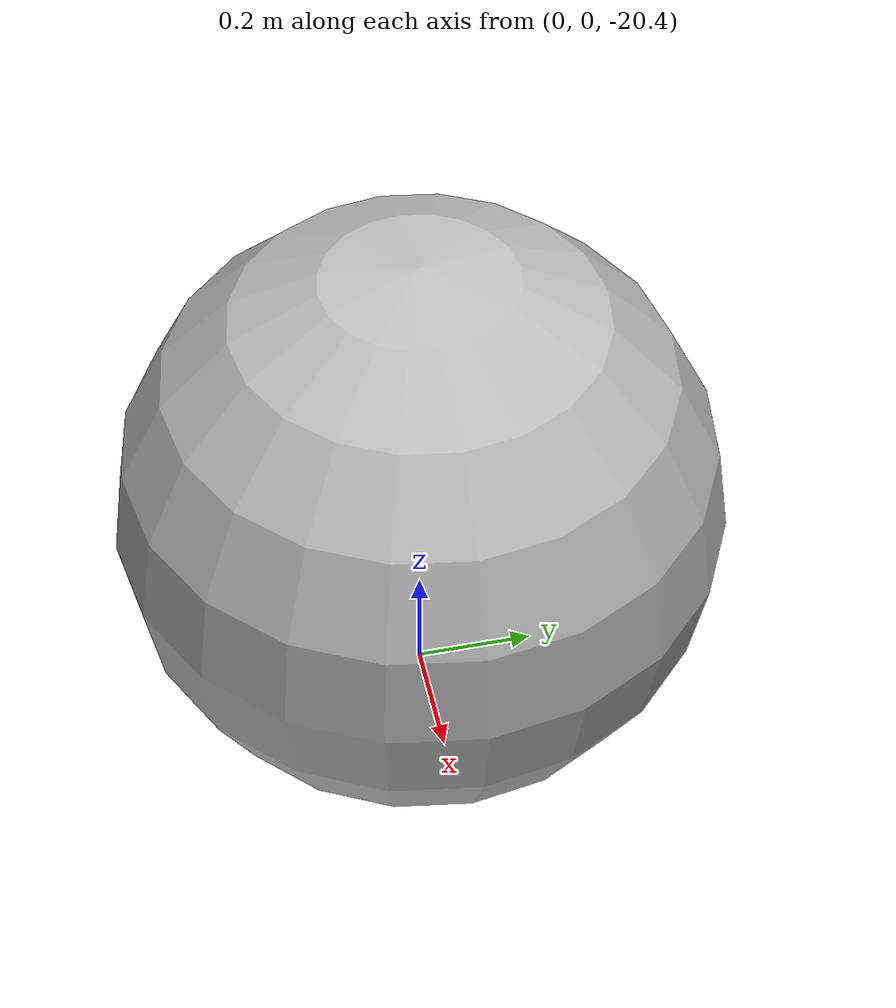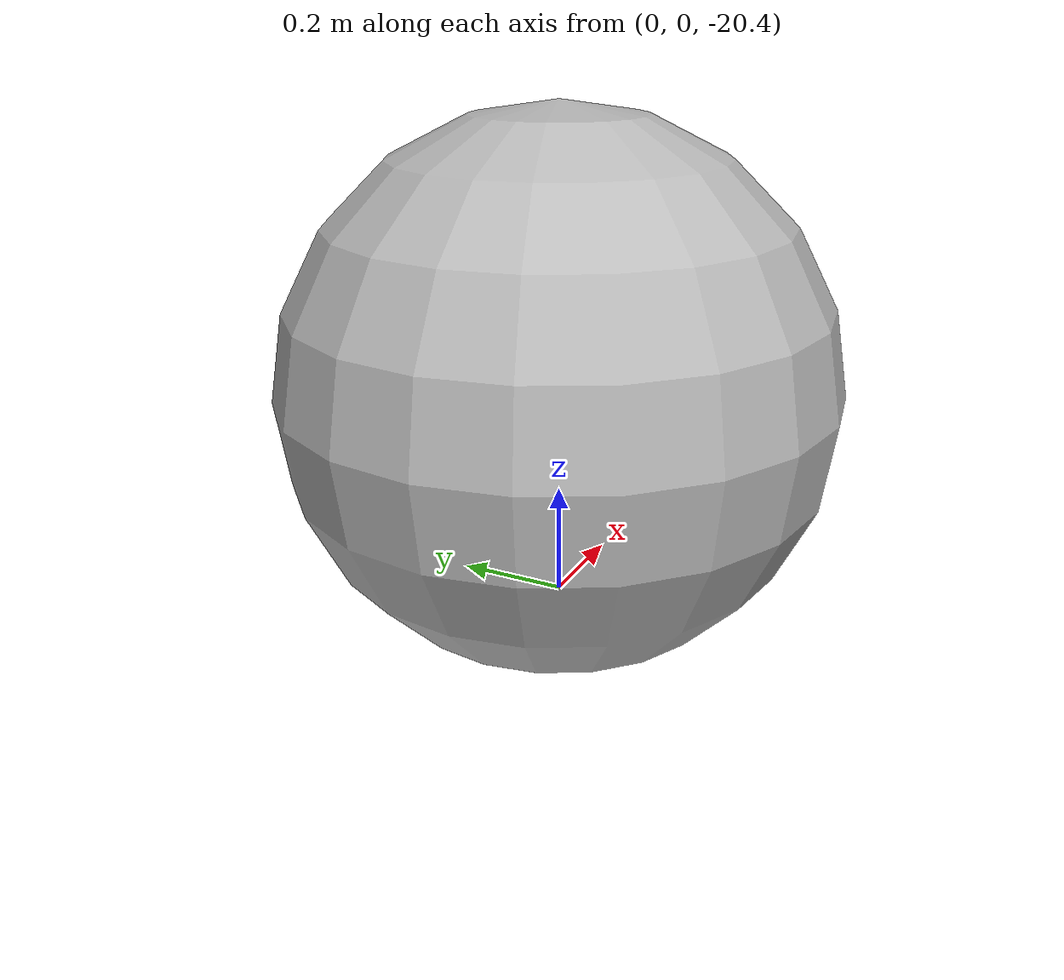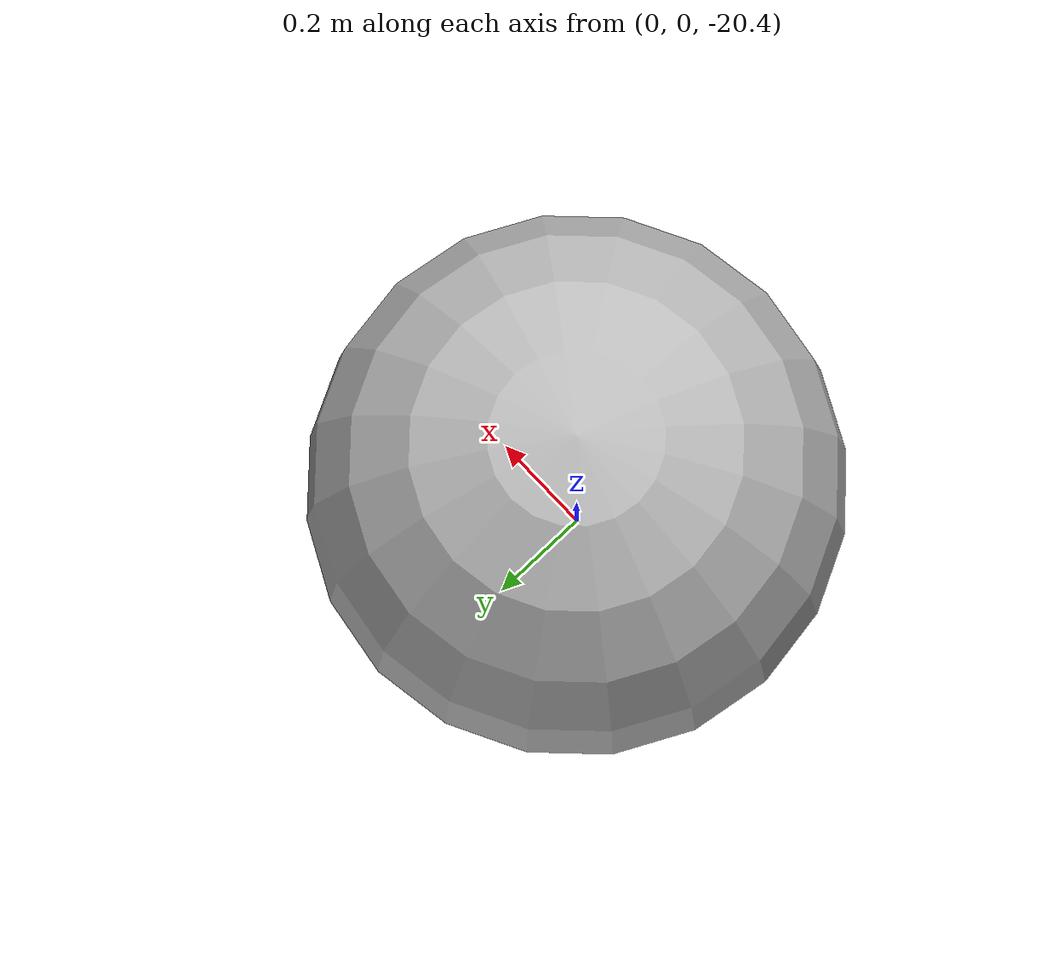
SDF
<?xml version="1.0"?>
<sdf version="1.9">
  <world name="empty_underwater">
    <gravity>0 0 -9.81</gravity>
    <physics name="default_physics" default="true" type="dartsim">
      <max_step_size>0.001</max_step_size>
      <real_time_factor>1</real_time_factor>
    </physics>

    <include>
      <uri>model://ocean_surface</uri>
      <pose>0 0 0 0 0 0</pose>
    </include>
    <include>
      <uri>model://sea_floor</uri>
      <pose>0 0 -100 0 0 0</pose>
    </include>

    <include>
      <uri>model://buoyancy_body</uri>
      <pose>0 0 -20 0 0 0</pose>
    </include>
  </world>
</sdf>

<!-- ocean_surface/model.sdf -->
<!-- Bluish, transparent ocean surface (visual only, no collision).
     cast_shadows is off so the plane does not put the whole underwater scene
     into the shadow of the sun. -->
<sdf version="1.9">
  <model name="ocean_surface">
    <static>true</static>
    <link name="surface_link">
      <visual name="surface_visual">
        <cast_shadows>false</cast_shadows>
        <transparency>0.65</transparency>
        <geometry>
          <plane>
            <normal>0 0 1</normal>
            <size>2000 2000</size>
          </plane>
        </geometry>
        <material>
          <ambient>0.15 0.45 0.90 1.0</ambient>
          <diffuse>0.15 0.45 0.90 1.0</diffuse>
          <specular>0.4 0.5 0.6 1.0</specular>
        </material>
      </visual>
    </link>
  </model>
</sdf>

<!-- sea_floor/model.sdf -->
<!-- Orange seafloor plane (collision + visual). -->
<sdf version="1.9">
  <model name="sea_floor">
    <static>true</static>
    <link name="floor_link">
      <visual name="floor_visual">
        <geometry>
          <plane>
            <normal>0 0 1</normal>
            <size>2000 2000</size>
          </plane>
        </geometry>
        <material>
          <ambient>0.85 0.45 0.10 1.0</ambient>
          <diffuse>0.85 0.45 0.10 1.0</diffuse>
          <specular>0.1 0.1 0.1 1.0</specular>
        </material>
      </visual>
      <collision name="floor_collision">
        <geometry>
          <plane>
            <normal>0 0 1</normal>
            <size>2000 2000</size>
          </plane>
        </geometry>
      </collision>
    </link>
  </model>
</sdf>

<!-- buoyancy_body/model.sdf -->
<sdf version="1.9">
  <model name="ball">
    <link name="base_link">
      <inertial>
        <mass>500.0</mass>
        <inertia>
          <ixx>50.0</ixx>
          <ixy>0.0</ixy>
          <ixz>0.0</ixz>
          <iyy>50.0</iyy>
          <iyz>0.0</iyz>
          <izz>50.0</izz>
        </inertia>
      </inertial>
      <visual name="visual">
        <geometry>
          <sphere>
            <radius>0.5</radius>
          </sphere>
        </geometry>
      </visual>
      <collision name="collision">
        <geometry>
          <sphere>
            <radius>0.5</radius>
          </sphere>
        </geometry>
      </collision>
    </link>

    <!-- Local gz-sim plugin: Archimedes (slices) + Fossen hydrodynamics -->
    <plugin filename="libunderwater_object.so"
            name="underwater_object">
      <link_name>base_link</link_name>
      <!-- Neutral buoyancy: rho = m / V = 500 / 0.5236 = 954.93 kg/m^3 -->
      <fluid_density>954.9296585513721</fluid_density>
      <volume>0.5235987755982988</volume>
      <radius>0.5</radius>
      <slices>200</slices>
      <!-- Added mass: sphere, 2/3*rho*pi*r^3 = 250 kg per linear axis -->
      <added_mass>250 0 0 0 0 0
                   0 250 0 0 0 0
                   0 0 250 0 0 0
                   0 0 0 0 0 0
                   0 0 0 0 0 0
                   0 0 0 0 0 0</added_mass>
      <linear_damping>0 0 0 0 0 0</linear_damping>
      <quadratic_damping>200 200 200 20 20 20</quadratic_damping>
      <!-- Periodic horizontal excitation: disabled by default (teleop is the
           main control channel). Set e.g. 500 for a 5 s ON / 5 s OFF test. -->
      <horizontal_force_amplitude>0</horizontal_force_amplitude>
      <horizontal_force_period>5</horizontal_force_period>
      <cmd_mode>velocity</cmd_mode>
      <cmd_velocity_gain>1.0</cmd_velocity_gain>
      <cmd_vel_kp>600</cmd_vel_kp>
      <cmd_ang_kp>100</cmd_ang_kp>
      <cmd_force_gain>500</cmd_force_gain>
      <cmd_torque_gain>100</cmd_torque_gain>
      <cmd_timeout>0.5</cmd_timeout>
      <debug>1</debug>
    </plugin>
  </model>
</sdf>
